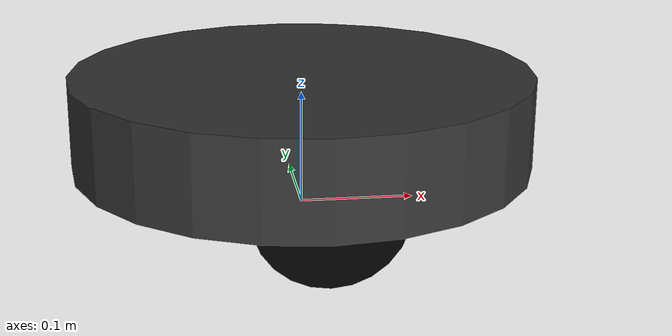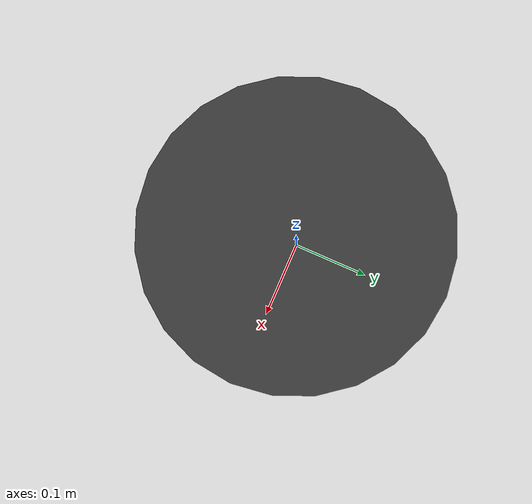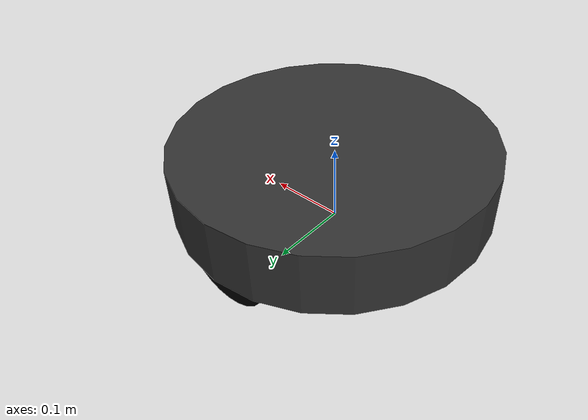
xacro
<?xml version="1.0"?>
<robot xmlns:xacro="http://www.ros.org/wiki/xacro">
  <link name="base_footprint"/>
  <joint name="base_joint" type="fixed">
    <parent link="base_footprint"/>
    <child link="base_link"/>
    <origin xyz="0 0 0.08" rpy="0 0 0"/>
  </joint>
  <link name="base_link">
    <visual>
      <geometry><cylinder radius="0.20" length="0.08"/></geometry>
      <material name="dark_grey"><color rgba="0.2 0.2 0.2 1.0"/></material>
    </visual>
    <collision>
      <geometry><cylinder radius="0.20" length="0.08"/></geometry>
    </collision>
    <inertial>
      <mass value="5.0"/>
      <inertia ixx="0.052" ixy="0.0" ixz="0.0" iyy="0.052" iyz="0.0" izz="0.10"/>
    </inertial>
  </link>
  <joint name="left_wheel_joint" type="continuous">
    <parent link="base_link"/>
    <child link="left_wheel"/>
    <origin xyz="0 0.17 -0.02" rpy="-1.5708 0 0"/>
    <axis xyz="0 0 1"/>
  </joint>
  <link name="left_wheel">
    <visual>
      <geometry><cylinder radius="0.06" length="0.03"/></geometry>
      <material name="black"><color rgba="0.0 0.0 0.0 1.0"/></material>
    </visual>
    <collision>
      <geometry><cylinder radius="0.06" length="0.03"/></geometry>
    </collision>
    <inertial>
      <mass value="0.5"/>
      <inertia ixx="0.00048" ixy="0.0" ixz="0.0" iyy="0.00048" iyz="0.0" izz="0.0009"/>
    </inertial>
  </link>
  <joint name="right_wheel_joint" type="continuous">
    <parent link="base_link"/>
    <child link="right_wheel"/>
    <origin xyz="0 -0.17 -0.02" rpy="-1.5708 0 0"/>
    <axis xyz="0 0 1"/>
  </joint>
  <link name="right_wheel">
    <visual>
      <geometry><cylinder radius="0.06" length="0.03"/></geometry>
      <material name="black"><color rgba="0.0 0.0 0.0 1.0"/></material>
    </visual>
    <collision>
      <geometry><cylinder radius="0.06" length="0.03"/></geometry>
    </collision>
    <inertial>
      <mass value="0.5"/>
      <inertia ixx="0.00048" ixy="0.0" ixz="0.0" iyy="0.00048" iyz="0.0" izz="0.0009"/>
    </inertial>
  </link>
  <joint name="front_caster_joint" type="fixed">
    <parent link="base_link"/>
    <child link="front_caster_wheel"/>
    <origin xyz="0.15 0 -0.05" rpy="0 0 0"/>
  </joint>
  <link name="front_caster_wheel">
    <visual>
      <geometry><sphere radius="0.03"/></geometry>
      <material name="light_grey"><color rgba="0.7 0.7 0.7 1.0"/></material>
    </visual>
    <collision>
      <geometry><sphere radius="0.03"/></geometry>
    </collision>
    <inertial>
      <mass value="0.1"/>
      <inertia ixx="0.000036" ixy="0.0" ixz="0.0" iyy="0.000036" iyz="0.0" izz="0.000036"/>
    </inertial>
  </link>
  <joint name="rear_caster_joint" type="fixed">
    <parent link="base_link"/>
    <child link="rear_caster_wheel"/>
    <origin xyz="-0.15 0 -0.05" rpy="0 0 0"/>
  </joint>
  <link name="rear_caster_wheel">
    <visual>
      <geometry><sphere radius="0.03"/></geometry>
      <material name="light_grey"><color rgba="0.7 0.7 0.7 1.0"/></material>
    </visual>
    <collision>
      <geometry><sphere radius="0.03"/></geometry>
    </collision>
    <inertial>
      <mass value="0.1"/>
      <inertia ixx="0.000036" ixy="0.0" ixz="0.0" iyy="0.000036" iyz="0.0" izz="0.000036"/>
    </inertial>
  </link>
  <gazebo reference="front_caster_wheel">
    <mu1>0.001</mu1>
    <mu2>0.001</mu2>
    <kp>1000000.0</kp>
    <kd>1.0</kd>
  </gazebo>
  <gazebo reference="rear_caster_wheel">
    <mu1>0.001</mu1>
    <mu2>0.001</mu2>
    <kp>1000000.0</kp>
    <kd>1.0</kd>
  </gazebo>
  <gazebo>
    <plugin filename="gz-sim-diff-drive-system" name="gz::sim::systems::DiffDrive">
      <left_joint>left_wheel_joint</left_joint>
      <right_joint>right_wheel_joint</right_joint>
      <wheel_separation>0.34</wheel_separation>
      <wheel_radius>0.06</wheel_radius>
      <topic>cmd_vel</topic>
      <odom_topic>odom</odom_topic>
      <frame_id>odom</frame_id>
      <child_frame_id>base_footprint</child_frame_id>
    </plugin>
  </gazebo>
</robot>
